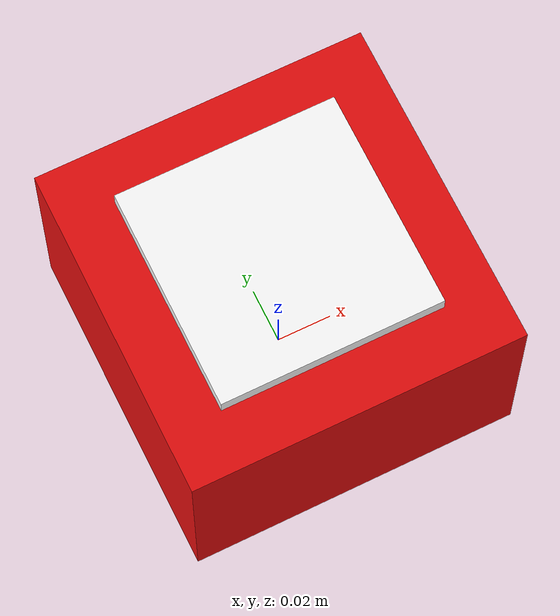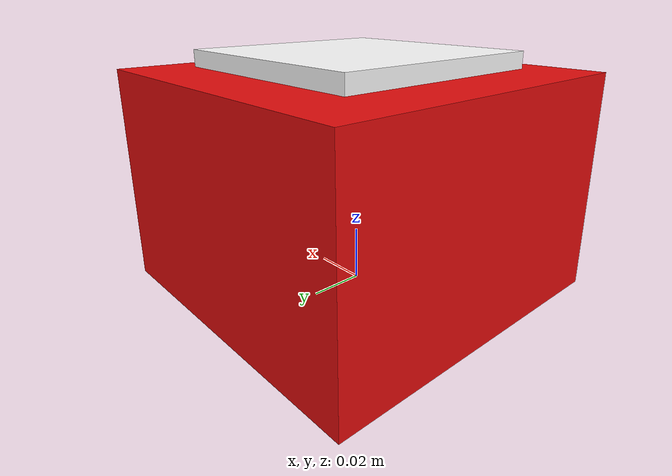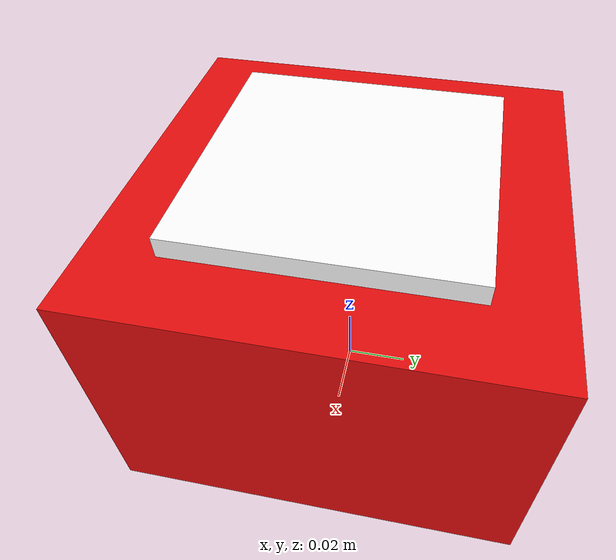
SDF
<?xml version="1.0" ?>
<sdf version="1.9">
  <model name="apriltag_column_1">
    <static>true</static>
    <link name="link">
      <collision name="pillar_col"><pose>0 0 0.04 0 0 0</pose>
        <geometry><box><size>0.12 0.12 0.08</size></box></geometry></collision>
      <visual name="pillar_vis"><pose>0 0 0.04 0 0 0</pose>
        <geometry><box><size>0.12 0.12 0.08</size></box></geometry>
        <material><ambient>0.9 0.05 0.05 1</ambient><diffuse>0.9 0.05 0.05 1</diffuse><specular>0.2 0.2 0.2 1</specular></material></visual>
      <!-- AprilTag flat on the TOP surface (facing up), read by the gripper/wrist camera -->
      <visual name="tag_vis"><pose>0 0 0.084 0 0 0</pose>
        <geometry><box><size>0.08 0.08 0.006</size></box></geometry>
        <material><diffuse>1 1 1 1</diffuse>
          <pbr><metal><albedo_map>tag36h11_0.png</albedo_map><metalness>0</metalness><roughness>1</roughness></metal></pbr>
        </material></visual>
    </link>
  </model>
</sdf>
